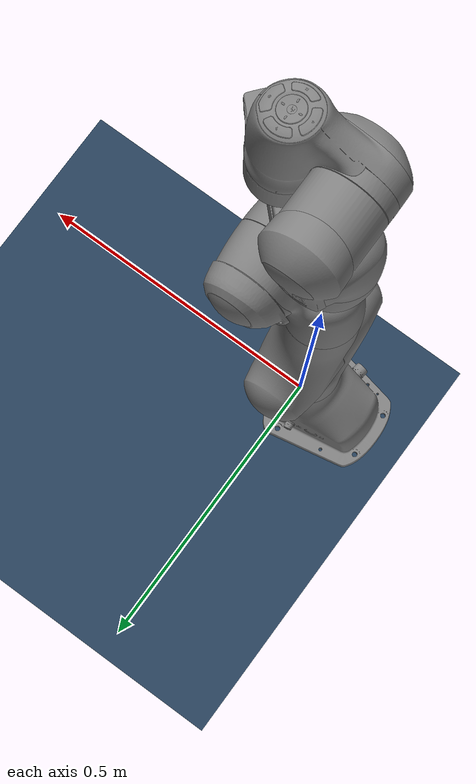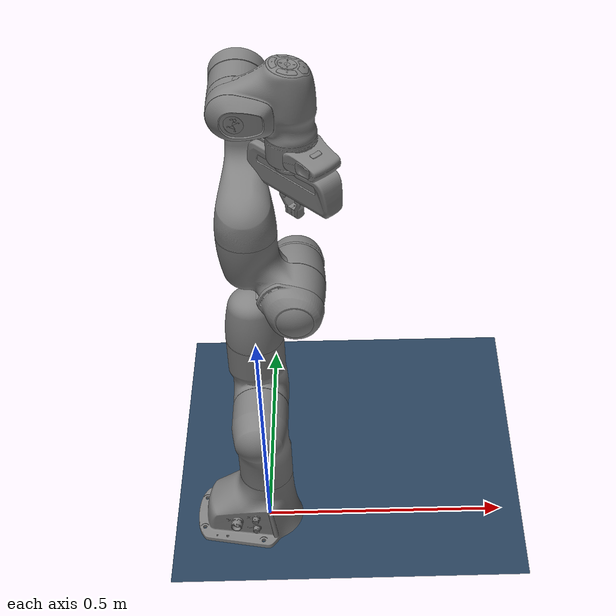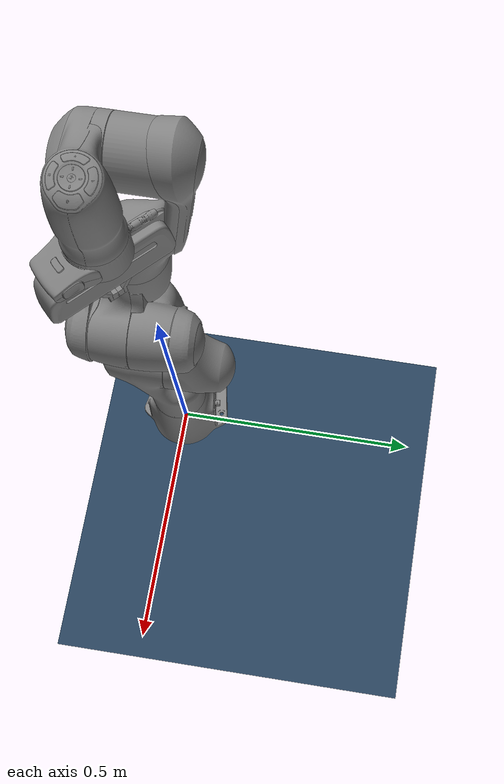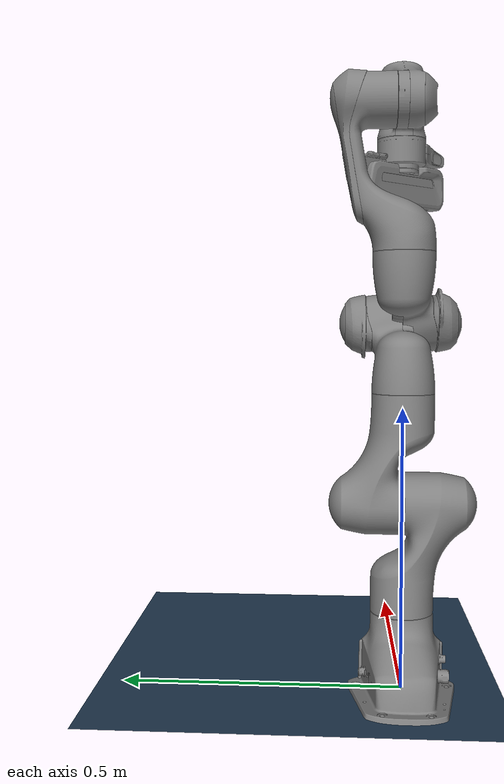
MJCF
<mujoco model="test_env">
    <compiler angle="radian" coordinate="local" meshdir="/home/yuxin/VLA_Simulation/robot_models/franka_emika_panda/assets"  autolimits="true"/>
    <option integrator="implicitfast"/>
    <statistic center="0.3 0 0.4" extent="1"/>

    <default>
        <default class="visual">
            <geom type="mesh" contype="0" conaffinity="0"/>
        </default>
        <default class="collision">
        <geom type="mesh" group="3"/>
        <default class="fingertip_pad_collision_1">
            <geom type="box" size="0.0085 0.004 0.0085" pos="0 0.0055 0.0445"/>
        </default>
        <default class="fingertip_pad_collision_2">
            <geom type="box" size="0.003 0.002 0.003" pos="0.0055 0.002 0.05"/>
        </default>
        <default class="fingertip_pad_collision_3">
            <geom type="box" size="0.003 0.002 0.003" pos="-0.0055 0.002 0.05"/>
        </default>
        <default class="fingertip_pad_collision_4">
            <geom type="box" size="0.003 0.002 0.0035" pos="0.0055 0.002 0.0395"/>
        </default>
        <default class="fingertip_pad_collision_5">
            <geom type="box" size="0.003 0.002 0.0035" pos="-0.0055 0.002 0.0395"/>
        </default>
        </default>
        <default class="joint">
        <joint type="hinge" limited="true" axis="0 0 1" pos="0 0 0"/>
        </default>
    </default>

    <visual>
        <headlight diffuse="0.6 0.6 0.6" ambient="0.3 0.3 0.3" specular="0 0 0"/>
        <rgba haze="0.15 0.25 0.35 1"/>
        <global azimuth="120" elevation="-20"/>
    </visual>

    <asset>
        <texture type="skybox" builtin="gradient" rgb1="0.3 0.5 0.7" rgb2="0 0 0" width="512" height="3072"/>
        <texture type="2d" name="groundplane" builtin="checker" mark="edge"
                rgb1="0.2 0.3 0.4" rgb2="0.1 0.2 0.3"
                markrgb="0.8 0.8 0.8" width="300" height="300"/>
        <material name="groundplane" texture="groundplane"
                texuniform="true" texrepeat="5 5" reflectance="0.2"/>

        <mesh name="link_0_0_visual" file="link0_0.obj"/>
        <mesh name="link_0_1_visual" file="link0_1.obj"/>
        <mesh name="link_0_2_visual" file="link0_2.obj"/>
        <mesh name="link_0_3_visual" file="link0_3.obj"/>
        <mesh name="link_0_4_visual" file="link0_4.obj"/>
        <mesh name="link_0_5_visual" file="link0_5.obj"/>
        <mesh name="link_0_7_visual" file="link0_7.obj"/>
        <mesh name="link_0_8_visual" file="link0_8.obj"/>
        <mesh name="link_0_9_visual" file="link0_9.obj"/>
        <mesh name="link_0_10_visual" file="link0_10.obj"/>
        <mesh name="link_0_11_visual" file="link0_11.obj"/>
        <mesh name="link_1_visual" file="link1.obj"/>
        <mesh name="link_2_visual" file="link2.obj"/>
        <mesh name="link_3_0_visual" file="link3_0.obj"/>
        <mesh name="link_3_1_visual" file="link3_1.obj"/>
        <mesh name="link_3_2_visual" file="link3_2.obj"/>
        <mesh name="link_3_3_visual" file="link3_3.obj"/>
        <mesh name="link_4_0_visual" file="link4_0.obj"/>
        <mesh name="link_4_1_visual" file="link4_1.obj"/>
        <mesh name="link_4_2_visual" file="link4_2.obj"/>
        <mesh name="link_4_3_visual" file="link4_3.obj"/>
        <mesh name="link_5_0_visual" file="link5_0.obj"/>
        <mesh name="link_5_1_visual" file="link5_1.obj"/>
        <mesh name="link_5_2_visual" file="link5_2.obj"/>
        <mesh name="link_6_0_visual" file="link6_0.obj"/>
        <mesh name="link_6_1_visual" file="link6_1.obj"/>
        <mesh name="link_6_2_visual" file="link6_2.obj"/>
        <mesh name="link_6_3_visual" file="link6_3.obj"/>
        <mesh name="link_6_4_visual" file="link6_4.obj"/>
        <mesh name="link_6_5_visual" file="link6_5.obj"/>
        <mesh name="link_6_6_visual" file="link6_6.obj"/>
        <mesh name="link_6_7_visual" file="link6_7.obj"/>
        <mesh name="link_6_8_visual" file="link6_8.obj"/>
        <mesh name="link_6_9_visual" file="link6_9.obj"/>
        <mesh name="link_6_10_visual" file="link6_10.obj"/>
        <mesh name="link_6_11_visual" file="link6_11.obj"/>
        <mesh name="link_6_12_visual" file="link6_12.obj"/>
        <mesh name="link_6_13_visual" file="link6_13.obj"/>
        <mesh name="link_6_14_visual" file="link6_14.obj"/>
        <mesh name="link_6_15_visual" file="link6_15.obj"/>
        <mesh name="link_6_16_visual" file="link6_16.obj"/>
        <mesh name="link_7_0_visual" file="link7_0.obj"/>
        <mesh name="link_7_1_visual" file="link7_1.obj"/>
        <mesh name="link_7_2_visual" file="link7_2.obj"/>
        <mesh name="link_7_3_visual" file="link7_3.obj"/>
        <mesh name="link_7_4_visual" file="link7_4.obj"/>
        <mesh name="link_7_5_visual" file="link7_5.obj"/>
        <mesh name="link_7_6_visual" file="link7_6.obj"/>
        <mesh name="link_7_7_visual" file="link7_7.obj"/>
        <mesh name="hand_0_visual" file="hand_0.obj"/>
        <mesh name="hand_1_visual" file="hand_1.obj"/>
        <mesh name="hand_2_visual" file="hand_2.obj"/>
        <mesh name="hand_3_visual" file="hand_3.obj"/>
        <mesh name="hand_4_visual" file="hand_4.obj"/>
        <mesh name="finger_0_visual" file="finger_0.obj"/>
        <mesh name="finger_1_visual" file="finger_1.obj"/>

        <!-- Collision meshes -->
        <mesh name="link_0_c" file="link0.stl"/>
        <mesh name="link_1_c" file="link1.stl"/>
        <mesh name="link_2_c" file="link2.stl"/>
        <mesh name="link_3_c" file="link3.stl"/>
        <mesh name="link_4_c" file="link4.stl"/>
        <mesh name="link_5_c0" file="link5_collision_0.obj"/>
        <mesh name="link_5_c1" file="link5_collision_1.obj"/>
        <mesh name="link_5_c2" file="link5_collision_2.obj"/>
        <mesh name="link_6_c" file="link6.stl"/>
        <mesh name="link_7_c" file="link7.stl"/>
        <mesh name="hand_c" file="hand.stl"/>

    </asset>

    <worldbody>
        <!-- LIGHT -->
        <light pos="0 0 1.5" dir="0 0 -1" directional="true"/>

        <!-- FLOOR -->
        <geom name="floor" size="0 0 0.05" type="plane" material="groundplane"/>

        <body name="link_0">
            <geom mesh="link_0_0_visual" class="visual"/>
            <geom mesh="link_0_1_visual" class="visual"/>
            <geom mesh="link_0_2_visual" class="visual"/>
            <geom mesh="link_0_3_visual" class="visual"/>
            <geom mesh="link_0_4_visual" class="visual"/>
            <geom mesh="link_0_5_visual" class="visual"/>
            <geom mesh="link_0_7_visual" class="visual"/>
            <geom mesh="link_0_8_visual" class="visual"/>
            <geom mesh="link_0_9_visual" class="visual"/>
            <geom mesh="link_0_10_visual" class="visual"/>
            <geom mesh="link_0_11_visual" class="visual"/>
            <geom mesh="link_0_c" class="collision"/>
            <body name="link_1" pos="0 0 0.333">
                <inertial mass="4.970684" pos="0.003875 0.002081 -0.04762"
                fullinertia="0.70337 0.70661 0.0091170 -0.00013900 0.0067720 0.019169"/>
                <joint name="joint_1" class="joint" range="-3.1415 3.1415"/>
                <geom mesh="link_1_visual" class="visual"/>
                <geom mesh="link_1_c" class="collision"/>
                <body name="link_2" pos="0 0 0" quat="1 -1 0 0">
                    <inertial mass="0.646926" pos="-0.003141 -0.02872 0.003495"
                        fullinertia="0.0079620 2.8110e-2 2.5995e-2 -3.925e-3 1.0254e-2 7.04e-4"/>
                    <joint name="joint_2" class="joint" range="-1.7628 1.7628"/>
                    <geom mesh="link_2_visual" class="visual"/>
                    <geom mesh="link_2_c" class="collision"/>
                    <body name="link_3" pos="0 -0.316 0" quat="1 1 0 0">
                        <joint name="joint_3" class="joint" range="-3.1415 3.1415"/>
                        <inertial mass="3.228604" pos="2.7518e-2 3.9252e-2 -6.6502e-2"
                        fullinertia="3.7242e-2 3.6155e-2 1.083e-2 -4.761e-3 -1.1396e-2 -1.2805e-2"/>
                        <geom mesh="link_3_0_visual" class="visual"/>
                        <geom mesh="link_3_1_visual" class="visual"/>
                        <geom mesh="link_3_2_visual" class="visual"/>
                        <geom mesh="link_3_3_visual" class="visual"/>
                        <geom mesh="link_3_c" class="collision"/>
                        <body name="link_4" pos="0.0825 0 0" quat="1 1 0 0">
                            <inertial mass="3.587895" pos="-5.317e-2 1.04419e-1 2.7454e-2"
                                fullinertia="2.5853e-2 1.9552e-2 2.8323e-2 7.796e-3 -1.332e-3 8.641e-3"/>
                            <joint name="joint_4" class="joint" range="-3.0718 -0.0698"/>
                            <geom mesh="link_4_0_visual" class="visual"/>
                            <geom mesh="link_4_1_visual" class="visual"/>
                            <geom mesh="link_4_2_visual" class="visual"/>
                            <geom mesh="link_4_3_visual" class="visual"/>
                            <geom mesh="link_4_c" class="collision"/>
                            <body name="link_5" pos="-0.0825 0.384 0" quat="1 -1 0 0">
                                <inertial mass="1.225946" pos="-1.1953e-2 4.1065e-2 -3.8437e-2"
                                fullinertia="3.5549e-2 2.9474e-2 8.627e-3 -2.117e-3 -4.037e-3 2.29e-4"/>
                                <joint name="joint_5" class="joint" range="-3.1415 3.1415"/>
                                <geom mesh="link_5_0_visual" class="visual"/>
                                <geom mesh="link_5_1_visual" class="visual"/>
                                <geom mesh="link_5_2_visual" class="visual"/>
                                <geom mesh="link_5_c0" class="collision"/>
                                <geom mesh="link_5_c1" class="collision"/>
                                <geom mesh="link_5_c2" class="collision"/>
                                <body name="link_6" pos="0 0 0" quat="1 1 0 0">
                                    <inertial mass="1.666555" pos="6.0149e-2 -1.4117e-2 -1.0517e-2"
                                        fullinertia="1.964e-3 4.354e-3 5.433e-3 1.09e-4 -1.158e-3 3.41e-4"/>
                                    <joint name="joint_6" class="joint" range="-0.0175 3.7525"/>
                                    <geom mesh="link_6_0_visual" class="visual"/>
                                    <geom mesh="link_6_1_visual" class="visual"/>
                                    <geom mesh="link_6_2_visual" class="visual"/>
                                    <geom mesh="link_6_3_visual" class="visual"/>
                                    <geom mesh="link_6_4_visual" class="visual"/>
                                    <geom mesh="link_6_5_visual" class="visual"/>
                                    <geom mesh="link_6_6_visual" class="visual"/>
                                    <geom mesh="link_6_7_visual" class="visual"/>
                                    <geom mesh="link_6_8_visual" class="visual"/>
                                    <geom mesh="link_6_9_visual" class="visual"/>
                                    <geom mesh="link_6_10_visual" class="visual"/>
                                    <geom mesh="link_6_11_visual" class="visual"/>
                                    <geom mesh="link_6_12_visual" class="visual"/>
                                    <geom mesh="link_6_13_visual" class="visual"/>
                                    <geom mesh="link_6_14_visual" class="visual"/>
                                    <geom mesh="link_6_15_visual" class="visual"/>
                                    <geom mesh="link_6_16_visual" class="visual"/>
                                    <geom mesh="link_6_c" class="collision"/>
                                    <body name="link_7" pos="0.088 0 0" quat="1 1 0 0">
                                        <inertial mass="7.35522e-01" pos="1.0517e-2 -4.252e-3 6.1597e-2"
                                        fullinertia="1.2516e-2 1.0027e-2 4.815e-3 -4.28e-4 -1.196e-3 -7.41e-4"/>
                                        <joint name="joint_7" class="joint" range="-3.1415 3.1415"/>
                                        <geom mesh="link_7_0_visual" class="visual"/>
                                        <geom mesh="link_7_1_visual" class="visual"/>
                                        <geom mesh="link_7_2_visual" class="visual"/>
                                        <geom mesh="link_7_3_visual" class="visual"/>
                                        <geom mesh="link_7_4_visual" class="visual"/>
                                        <geom mesh="link_7_5_visual" class="visual"/>
                                        <geom mesh="link_7_6_visual" class="visual"/>
                                        <geom mesh="link_7_7_visual" class="visual"/>
                                        <geom mesh="link_7_c" class="collision"/>

                                        <body name="hand" pos="0 0 0.107" quat="0.9238795 0 0 -0.3826834">
                                            <inertial mass="0.73" pos="-0.01 0 0.03" diaginertia="0.001 0.0025 0.0017"/>

                                            <!-- Tool Center Point (TCP) near gripper tip. Used for visualization / control. -->
                                            <!-- Estimated from finger base (z=0.0584) + fingertip pad (~z=0.05) => z≈0.1084 in hand frame. -->
                                            <site name="hand_tip_site" pos="0 0 0.1084" size="0.005"/>

                                            <!-- End effector camera -->
                                            <camera name="ee_cam"
                                                    pos="-0.07 0 0"
                                                    quat="0 1 1 0"
                                                    fovy="80"/>

                                            <geom mesh="hand_0_visual" class="visual"/>
                                            <geom mesh="hand_1_visual" class="visual"/>
                                            <geom mesh="hand_2_visual" class="visual"/>
                                            <geom mesh="hand_3_visual" class="visual"/>
                                            <geom mesh="hand_4_visual" class="visual"/>
                                            <geom mesh="hand_c" class="collision"/>
                                            <body name="left_finger" pos="0 0 0.0584">
                                                <inertial mass="0.015" pos="0 0 0" diaginertia="2.375e-6 2.375e-6 7.5e-7"/>
                                                <joint name="finger_joint_1" axis="0 1 0" type="slide" range="0 0.04"/>
                                                <geom mesh="finger_0_visual" class="visual"/>
                                                <geom mesh="finger_1_visual" class="visual"/>
                                                <geom mesh="finger_0_visual" class="collision"/>
                                                <geom class="fingertip_pad_collision_1"/>
                                                <geom class="fingertip_pad_collision_2"/>
                                                <geom class="fingertip_pad_collision_3"/>
                                                <geom class="fingertip_pad_collision_4"/>
                                                <geom class="fingertip_pad_collision_5"/>
                                            </body>
                                            <body name="right_finger" pos="0 0 0.0584" quat="0 0 0 1">
                                                <inertial mass="0.015" pos="0 0 0" diaginertia="2.375e-6 2.375e-6 7.5e-7"/>
                                                <joint name="finger_joint_2" axis="0 1 0" type="slide" range="0 0.04"/>
                                                <geom mesh="finger_0_visual" class="visual"/>
                                                <geom mesh="finger_1_visual" class="visual"/>
                                                <geom mesh="finger_0_visual" class="collision"/>
                                                <geom class="fingertip_pad_collision_1"/>
                                                <geom class="fingertip_pad_collision_2"/>
                                                <geom class="fingertip_pad_collision_3"/>
                                                <geom class="fingertip_pad_collision_4"/>
                                                <geom class="fingertip_pad_collision_5"/>
                                            </body>
                                        </body>
                                    </body>
                                </body>
                            </body>
                        </body>
                    </body>
                </body>
            </body>
        </body>
    </worldbody>

    <actuator>
        <motor name="joint_1_motor" joint="joint_1"/>
        <motor name="joint_2_motor" joint="joint_2"/>
        <motor name="joint_3_motor" joint="joint_3"/>
        <motor name="joint_4_motor" joint="joint_4"/>
        <motor name="joint_5_motor" joint="joint_5"/>
        <motor name="joint_6_motor" joint="joint_6"/>
        <motor name="joint_7_motor" joint="joint_7"/>
        <position name="left_finger_position" joint="finger_joint_1" ctrlrange="0 0.04" kp="100"/>
        <position name="right_finger_position" joint="finger_joint_2" ctrlrange="0 0.04" kp="100"/>
    </actuator>

</mujoco>
